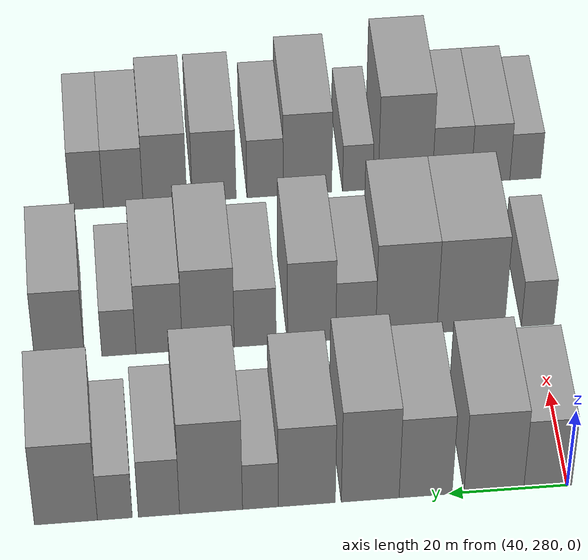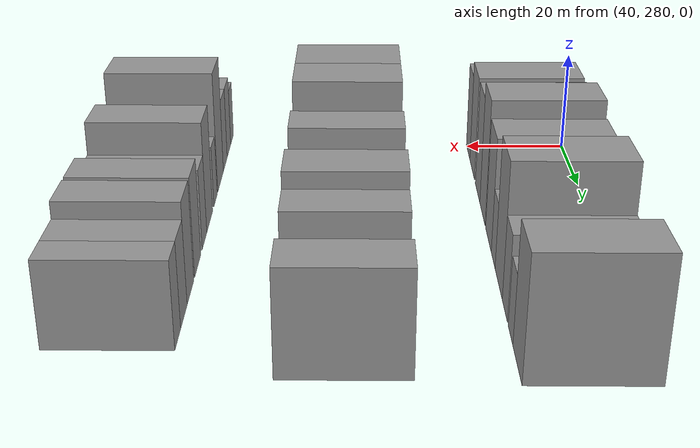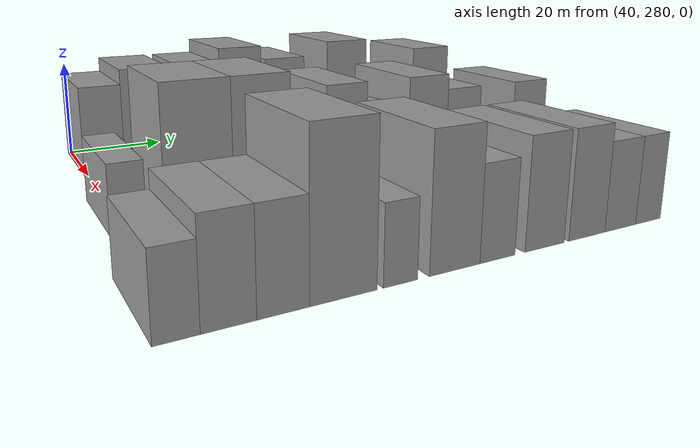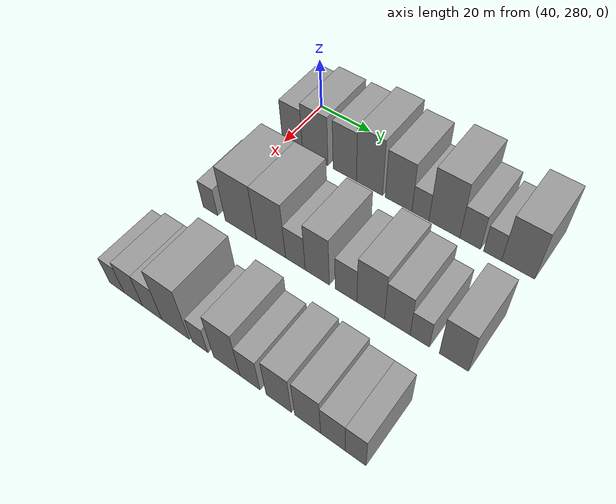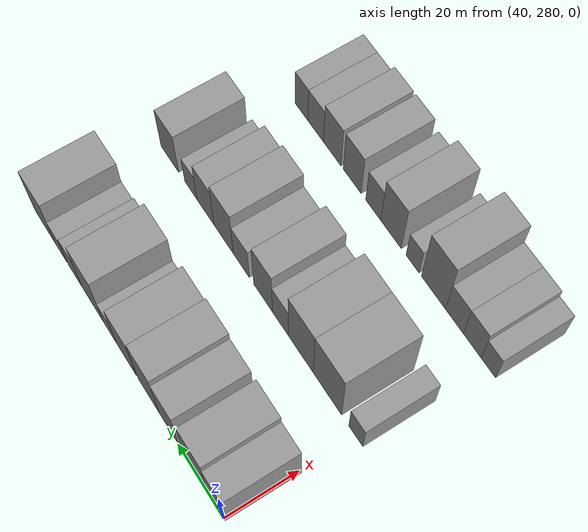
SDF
<sdf version="1.6">
 <world name="default">
  <model name="building_73">
   <static>1</static>
   <pose>50.0000 283.3544 0 0.000000 0.000000 0.000000</pose>
   <link name="link">
    <pose>0 0 9.00 0 0 0</pose>
    <collision name="collision"><geometry><box><size>20.0000 8.1279 18.0000</size></box></geometry></collision>
    <visual name="visual">
     <cast_shadows>0</cast_shadows>
     <geometry><box><size>20.0000 8.1279 18.0000</size></box></geometry>
     <material>
      <script>
       <uri>model://grey_wall/materials/scripts</uri>
       <uri>model://grey_wall/materials/textures</uri>
       <name>vrc/grey_wall</name>
      </script>
     </material>
    </visual>
   </link>
  </model>
  <model name="building_74">
   <static>1</static>
   <pose>50.0000 292.4575 0 0.000000 0.000000 0.000000</pose>
   <link name="link">
    <pose>0 0 10.50 0 0 0</pose>
    <collision name="collision"><geometry><box><size>20.0000 10.0783 21.0000</size></box></geometry></collision>
    <visual name="visual">
     <cast_shadows>0</cast_shadows>
     <geometry><box><size>20.0000 10.0783 21.0000</size></box></geometry>
     <material>
      <script>
       <uri>model://grey_wall/materials/scripts</uri>
       <uri>model://grey_wall/materials/textures</uri>
       <name>vrc/grey_wall</name>
      </script>
     </material>
    </visual>
   </link>
  </model>
  <model name="building_75">
   <static>1</static>
   <pose>50.0000 303.9528 0 0.000000 0.000000 0.000000</pose>
   <link name="link">
    <pose>0 0 10.50 0 0 0</pose>
    <collision name="collision"><geometry><box><size>20.0000 8.9124 21.0000</size></box></geometry></collision>
    <visual name="visual">
     <cast_shadows>0</cast_shadows>
     <geometry><box><size>20.0000 8.9124 21.0000</size></box></geometry>
     <material>
      <script>
       <uri>model://grey_wall/materials/scripts</uri>
       <uri>model://grey_wall/materials/textures</uri>
       <name>vrc/grey_wall</name>
      </script>
     </material>
    </visual>
   </link>
  </model>
  <model name="building_76">
   <static>1</static>
   <pose>50.0000 313.2614 0 0.000000 0.000000 0.000000</pose>
   <link name="link">
    <pose>0 0 12.00 0 0 0</pose>
    <collision name="collision"><geometry><box><size>20.0000 9.7048 24.0000</size></box></geometry></collision>
    <visual name="visual">
     <cast_shadows>0</cast_shadows>
     <geometry><box><size>20.0000 9.7048 24.0000</size></box></geometry>
     <material>
      <script>
       <uri>model://grey_wall/materials/scripts</uri>
       <uri>model://grey_wall/materials/textures</uri>
       <name>vrc/grey_wall</name>
      </script>
     </material>
    </visual>
   </link>
  </model>
  <model name="building_77">
   <static>1</static>
   <pose>50.0000 323.8792 0 0.000000 0.000000 0.000000</pose>
   <link name="link">
    <pose>0 0 10.50 0 0 0</pose>
    <collision name="collision"><geometry><box><size>20.0000 9.5310 21.0000</size></box></geometry></collision>
    <visual name="visual">
     <cast_shadows>0</cast_shadows>
     <geometry><box><size>20.0000 9.5310 21.0000</size></box></geometry>
     <material>
      <script>
       <uri>model://grey_wall/materials/scripts</uri>
       <uri>model://grey_wall/materials/textures</uri>
       <name>vrc/grey_wall</name>
      </script>
     </material>
    </visual>
   </link>
  </model>
  <model name="building_78">
   <static>1</static>
   <pose>50.0000 331.6305 0 0.000000 0.000000 0.000000</pose>
   <link name="link">
    <pose>0 0 6.00 0 0 0</pose>
    <collision name="collision"><geometry><box><size>20.0000 5.9716 12.0000</size></box></geometry></collision>
    <visual name="visual">
     <cast_shadows>0</cast_shadows>
     <geometry><box><size>20.0000 5.9716 12.0000</size></box></geometry>
     <material>
      <script>
       <uri>model://grey_wall/materials/scripts</uri>
       <uri>model://grey_wall/materials/textures</uri>
       <name>vrc/grey_wall</name>
      </script>
     </material>
    </visual>
   </link>
  </model>
  <model name="building_79">
   <static>1</static>
   <pose>50.0000 339.8569 0 0.000000 0.000000 0.000000</pose>
   <link name="link">
    <pose>0 0 12.00 0 0 0</pose>
    <collision name="collision"><geometry><box><size>20.0000 10.4810 24.0000</size></box></geometry></collision>
    <visual name="visual">
     <cast_shadows>0</cast_shadows>
     <geometry><box><size>20.0000 10.4810 24.0000</size></box></geometry>
     <material>
      <script>
       <uri>model://grey_wall/materials/scripts</uri>
       <uri>model://grey_wall/materials/textures</uri>
       <name>vrc/grey_wall</name>
      </script>
     </material>
    </visual>
   </link>
  </model>
  <model name="building_80">
   <static>1</static>
   <pose>50.0000 348.5293 0 0.000000 0.000000 0.000000</pose>
   <link name="link">
    <pose>0 0 7.50 0 0 0</pose>
    <collision name="collision"><geometry><box><size>20.0000 6.8639 15.0000</size></box></geometry></collision>
    <visual name="visual">
     <cast_shadows>0</cast_shadows>
     <geometry><box><size>20.0000 6.8639 15.0000</size></box></geometry>
     <material>
      <script>
       <uri>model://grey_wall/materials/scripts</uri>
       <uri>model://grey_wall/materials/textures</uri>
       <name>vrc/grey_wall</name>
      </script>
     </material>
    </visual>
   </link>
  </model>
  <model name="building_81">
   <static>1</static>
   <pose>50.0000 355.8564 0 0.000000 0.000000 0.000000</pose>
   <link name="link">
    <pose>0 0 6.00 0 0 0</pose>
    <collision name="collision"><geometry><box><size>20.0000 5.7903 12.0000</size></box></geometry></collision>
    <visual name="visual">
     <cast_shadows>0</cast_shadows>
     <geometry><box><size>20.0000 5.7903 12.0000</size></box></geometry>
     <material>
      <script>
       <uri>model://grey_wall/materials/scripts</uri>
       <uri>model://grey_wall/materials/textures</uri>
       <name>vrc/grey_wall</name>
      </script>
     </material>
    </visual>
   </link>
  </model>
  <model name="building_82">
   <static>1</static>
   <pose>50.0000 363.9693 0 0.000000 0.000000 0.000000</pose>
   <link name="link">
    <pose>0 0 10.50 0 0 0</pose>
    <collision name="collision"><geometry><box><size>20.0000 10.4354 21.0000</size></box></geometry></collision>
    <visual name="visual">
     <cast_shadows>0</cast_shadows>
     <geometry><box><size>20.0000 10.4354 21.0000</size></box></geometry>
     <material>
      <script>
       <uri>model://grey_wall/materials/scripts</uri>
       <uri>model://grey_wall/materials/textures</uri>
       <name>vrc/grey_wall</name>
      </script>
     </material>
    </visual>
   </link>
  </model>
  <model name="building_157">
   <static>1</static>
   <pose>85.0000 279.8059 0 0.000000 0.000000 0.000000</pose>
   <link name="link">
    <pose>0 0 6.00 0 0 0</pose>
    <collision name="collision"><geometry><box><size>20.0000 5.7753 12.0000</size></box></geometry></collision>
    <visual name="visual">
     <cast_shadows>0</cast_shadows>
     <geometry><box><size>20.0000 5.7753 12.0000</size></box></geometry>
     <material>
      <script>
       <uri>model://grey_wall/materials/scripts</uri>
       <uri>model://grey_wall/materials/textures</uri>
       <name>vrc/grey_wall</name>
      </script>
     </material>
    </visual>
   </link>
  </model>
  <model name="building_158">
   <static>1</static>
   <pose>85.0000 291.6742 0 0.000000 0.000000 0.000000</pose>
   <link name="link">
    <pose>0 0 12.00 0 0 0</pose>
    <collision name="collision"><geometry><box><size>20.0000 11.9613 24.0000</size></box></geometry></collision>
    <visual name="visual">
     <cast_shadows>0</cast_shadows>
     <geometry><box><size>20.0000 11.9613 24.0000</size></box></geometry>
     <material>
      <script>
       <uri>model://grey_wall/materials/scripts</uri>
       <uri>model://grey_wall/materials/textures</uri>
       <name>vrc/grey_wall</name>
      </script>
     </material>
    </visual>
   </link>
  </model>
  <model name="building_159">
   <static>1</static>
   <pose>85.0000 303.0565 0 0.000000 0.000000 0.000000</pose>
   <link name="link">
    <pose>0 0 12.00 0 0 0</pose>
    <collision name="collision"><geometry><box><size>20.0000 10.8032 24.0000</size></box></geometry></collision>
    <visual name="visual">
     <cast_shadows>0</cast_shadows>
     <geometry><box><size>20.0000 10.8032 24.0000</size></box></geometry>
     <material>
      <script>
       <uri>model://grey_wall/materials/scripts</uri>
       <uri>model://grey_wall/materials/textures</uri>
       <name>vrc/grey_wall</name>
      </script>
     </material>
    </visual>
   </link>
  </model>
  <model name="building_160">
   <static>1</static>
   <pose>85.0000 311.9696 0 0.000000 0.000000 0.000000</pose>
   <link name="link">
    <pose>0 0 7.50 0 0 0</pose>
    <collision name="collision"><geometry><box><size>20.0000 7.0230 15.0000</size></box></geometry></collision>
    <visual name="visual">
     <cast_shadows>0</cast_shadows>
     <geometry><box><size>20.0000 7.0230 15.0000</size></box></geometry>
     <material>
      <script>
       <uri>model://grey_wall/materials/scripts</uri>
       <uri>model://grey_wall/materials/textures</uri>
       <name>vrc/grey_wall</name>
      </script>
     </material>
    </visual>
   </link>
  </model>
  <model name="building_161">
   <static>1</static>
   <pose>85.0000 319.7075 0 0.000000 0.000000 0.000000</pose>
   <link name="link">
    <pose>0 0 10.50 0 0 0</pose>
    <collision name="collision"><geometry><box><size>20.0000 8.4528 21.0000</size></box></geometry></collision>
    <visual name="visual">
     <cast_shadows>0</cast_shadows>
     <geometry><box><size>20.0000 8.4528 21.0000</size></box></geometry>
     <material>
      <script>
       <uri>model://grey_wall/materials/scripts</uri>
       <uri>model://grey_wall/materials/textures</uri>
       <name>vrc/grey_wall</name>
      </script>
     </material>
    </visual>
   </link>
  </model>
  <model name="building_162">
   <static>1</static>
   <pose>85.0000 329.5871 0 0.000000 0.000000 0.000000</pose>
   <link name="link">
    <pose>0 0 7.50 0 0 0</pose>
    <collision name="collision"><geometry><box><size>20.0000 7.3066 15.0000</size></box></geometry></collision>
    <visual name="visual">
     <cast_shadows>0</cast_shadows>
     <geometry><box><size>20.0000 7.3066 15.0000</size></box></geometry>
     <material>
      <script>
       <uri>model://grey_wall/materials/scripts</uri>
       <uri>model://grey_wall/materials/textures</uri>
       <name>vrc/grey_wall</name>
      </script>
     </material>
    </visual>
   </link>
  </model>
  <model name="building_163">
   <static>1</static>
   <pose>85.0000 337.7829 0 0.000000 0.000000 0.000000</pose>
   <link name="link">
    <pose>0 0 10.50 0 0 0</pose>
    <collision name="collision"><geometry><box><size>20.0000 9.0849 21.0000</size></box></geometry></collision>
    <visual name="visual">
     <cast_shadows>0</cast_shadows>
     <geometry><box><size>20.0000 9.0849 21.0000</size></box></geometry>
     <material>
      <script>
       <uri>model://grey_wall/materials/scripts</uri>
       <uri>model://grey_wall/materials/textures</uri>
       <name>vrc/grey_wall</name>
      </script>
     </material>
    </visual>
   </link>
  </model>
  <model name="building_164">
   <static>1</static>
   <pose>85.0000 346.3724 0 0.000000 0.000000 0.000000</pose>
   <link name="link">
    <pose>0 0 9.00 0 0 0</pose>
    <collision name="collision"><geometry><box><size>20.0000 8.0942 18.0000</size></box></geometry></collision>
    <visual name="visual">
     <cast_shadows>0</cast_shadows>
     <geometry><box><size>20.0000 8.0942 18.0000</size></box></geometry>
     <material>
      <script>
       <uri>model://grey_wall/materials/scripts</uri>
       <uri>model://grey_wall/materials/textures</uri>
       <name>vrc/grey_wall</name>
      </script>
     </material>
    </visual>
   </link>
  </model>
  <model name="building_165">
   <static>1</static>
   <pose>85.0000 353.4026 0 0.000000 0.000000 0.000000</pose>
   <link name="link">
    <pose>0 0 6.00 0 0 0</pose>
    <collision name="collision"><geometry><box><size>20.0000 5.9663 12.0000</size></box></geometry></collision>
    <visual name="visual">
     <cast_shadows>0</cast_shadows>
     <geometry><box><size>20.0000 5.9663 12.0000</size></box></geometry>
     <material>
      <script>
       <uri>model://grey_wall/materials/scripts</uri>
       <uri>model://grey_wall/materials/textures</uri>
       <name>vrc/grey_wall</name>
      </script>
     </material>
    </visual>
   </link>
  </model>
  <model name="building_166">
   <static>1</static>
   <pose>85.0000 363.7297 0 0.000000 0.000000 0.000000</pose>
   <link name="link">
    <pose>0 0 9.00 0 0 0</pose>
    <collision name="collision"><geometry><box><size>20.0000 8.6880 18.0000</size></box></geometry></collision>
    <visual name="visual">
     <cast_shadows>0</cast_shadows>
     <geometry><box><size>20.0000 8.6880 18.0000</size></box></geometry>
     <material>
      <script>
       <uri>model://grey_wall/materials/scripts</uri>
       <uri>model://grey_wall/materials/textures</uri>
       <name>vrc/grey_wall</name>
      </script>
     </material>
    </visual>
   </link>
  </model>
  <model name="building_237">
   <static>1</static>
   <pose>120.0000 276.8444 0 0.000000 0.000000 0.000000</pose>
   <link name="link">
    <pose>0 0 6.00 0 0 0</pose>
    <collision name="collision"><geometry><box><size>20.0000 5.7488 12.0000</size></box></geometry></collision>
    <visual name="visual">
     <cast_shadows>0</cast_shadows>
     <geometry><box><size>20.0000 5.7488 12.0000</size></box></geometry>
     <material>
      <script>
       <uri>model://grey_wall/materials/scripts</uri>
       <uri>model://grey_wall/materials/textures</uri>
       <name>vrc/grey_wall</name>
      </script>
     </material>
    </visual>
   </link>
  </model>
  <model name="building_238">
   <static>1</static>
   <pose>120.0000 283.2924 0 0.000000 0.000000 0.000000</pose>
   <link name="link">
    <pose>0 0 7.50 0 0 0</pose>
    <collision name="collision"><geometry><box><size>20.0000 7.1472 15.0000</size></box></geometry></collision>
    <visual name="visual">
     <cast_shadows>0</cast_shadows>
     <geometry><box><size>20.0000 7.1472 15.0000</size></box></geometry>
     <material>
      <script>
       <uri>model://grey_wall/materials/scripts</uri>
       <uri>model://grey_wall/materials/textures</uri>
       <name>vrc/grey_wall</name>
      </script>
     </material>
    </visual>
   </link>
  </model>
  <model name="building_239">
   <static>1</static>
   <pose>120.0000 290.4826 0 0.000000 0.000000 0.000000</pose>
   <link name="link">
    <pose>0 0 7.50 0 0 0</pose>
    <collision name="collision"><geometry><box><size>20.0000 7.2331 15.0000</size></box></geometry></collision>
    <visual name="visual">
     <cast_shadows>0</cast_shadows>
     <geometry><box><size>20.0000 7.2331 15.0000</size></box></geometry>
     <material>
      <script>
       <uri>model://grey_wall/materials/scripts</uri>
       <uri>model://grey_wall/materials/textures</uri>
       <name>vrc/grey_wall</name>
      </script>
     </material>
    </visual>
   </link>
  </model>
  <model name="building_240">
   <static>1</static>
   <pose>120.0000 299.1024 0 0.000000 0.000000 0.000000</pose>
   <link name="link">
    <pose>0 0 12.00 0 0 0</pose>
    <collision name="collision"><geometry><box><size>20.0000 10.0066 24.0000</size></box></geometry></collision>
    <visual name="visual">
     <cast_shadows>0</cast_shadows>
     <geometry><box><size>20.0000 10.0066 24.0000</size></box></geometry>
     <material>
      <script>
       <uri>model://grey_wall/materials/scripts</uri>
       <uri>model://grey_wall/materials/textures</uri>
       <name>vrc/grey_wall</name>
      </script>
     </material>
    </visual>
   </link>
  </model>
  <model name="building_241">
   <static>1</static>
   <pose>120.0000 307.8752 0 0.000000 0.000000 0.000000</pose>
   <link name="link">
    <pose>0 0 6.00 0 0 0</pose>
    <collision name="collision"><geometry><box><size>20.0000 5.5390 12.0000</size></box></geometry></collision>
    <visual name="visual">
     <cast_shadows>0</cast_shadows>
     <geometry><box><size>20.0000 5.5390 12.0000</size></box></geometry>
     <material>
      <script>
       <uri>model://grey_wall/materials/scripts</uri>
       <uri>model://grey_wall/materials/textures</uri>
       <name>vrc/grey_wall</name>
      </script>
     </material>
    </visual>
   </link>
  </model>
  <model name="building_242">
   <static>1</static>
   <pose>120.0000 317.1034 0 0.000000 0.000000 0.000000</pose>
   <link name="link">
    <pose>0 0 10.50 0 0 0</pose>
    <collision name="collision"><geometry><box><size>20.0000 8.9175 21.0000</size></box></geometry></collision>
    <visual name="visual">
     <cast_shadows>0</cast_shadows>
     <geometry><box><size>20.0000 8.9175 21.0000</size></box></geometry>
     <material>
      <script>
       <uri>model://grey_wall/materials/scripts</uri>
       <uri>model://grey_wall/materials/textures</uri>
       <name>vrc/grey_wall</name>
      </script>
     </material>
    </visual>
   </link>
  </model>
  <model name="building_243">
   <static>1</static>
   <pose>120.0000 324.8792 0 0.000000 0.000000 0.000000</pose>
   <link name="link">
    <pose>0 0 7.50 0 0 0</pose>
    <collision name="collision"><geometry><box><size>20.0000 6.6342 15.0000</size></box></geometry></collision>
    <visual name="visual">
     <cast_shadows>0</cast_shadows>
     <geometry><box><size>20.0000 6.6342 15.0000</size></box></geometry>
     <material>
      <script>
       <uri>model://grey_wall/materials/scripts</uri>
       <uri>model://grey_wall/materials/textures</uri>
       <name>vrc/grey_wall</name>
      </script>
     </material>
    </visual>
   </link>
  </model>
  <model name="building_244">
   <static>1</static>
   <pose>120.0000 334.2100 0 0.000000 0.000000 0.000000</pose>
   <link name="link">
    <pose>0 0 9.00 0 0 0</pose>
    <collision name="collision"><geometry><box><size>20.0000 8.0273 18.0000</size></box></geometry></collision>
    <visual name="visual">
     <cast_shadows>0</cast_shadows>
     <geometry><box><size>20.0000 8.0273 18.0000</size></box></geometry>
     <material>
      <script>
       <uri>model://grey_wall/materials/scripts</uri>
       <uri>model://grey_wall/materials/textures</uri>
       <name>vrc/grey_wall</name>
      </script>
     </material>
    </visual>
   </link>
  </model>
  <model name="building_245">
   <static>1</static>
   <pose>120.0000 343.2223 0 0.000000 0.000000 0.000000</pose>
   <link name="link">
    <pose>0 0 9.00 0 0 0</pose>
    <collision name="collision"><geometry><box><size>20.0000 7.9974 18.0000</size></box></geometry></collision>
    <visual name="visual">
     <cast_shadows>0</cast_shadows>
     <geometry><box><size>20.0000 7.9974 18.0000</size></box></geometry>
     <material>
      <script>
       <uri>model://grey_wall/materials/scripts</uri>
       <uri>model://grey_wall/materials/textures</uri>
       <name>vrc/grey_wall</name>
      </script>
     </material>
    </visual>
   </link>
  </model>
  <model name="building_246">
   <static>1</static>
   <pose>120.0000 350.8408 0 0.000000 0.000000 0.000000</pose>
   <link name="link">
    <pose>0 0 7.50 0 0 0</pose>
    <collision name="collision"><geometry><box><size>20.0000 7.2397 15.0000</size></box></geometry></collision>
    <visual name="visual">
     <cast_shadows>0</cast_shadows>
     <geometry><box><size>20.0000 7.2397 15.0000</size></box></geometry>
     <material>
      <script>
       <uri>model://grey_wall/materials/scripts</uri>
       <uri>model://grey_wall/materials/textures</uri>
       <name>vrc/grey_wall</name>
      </script>
     </material>
    </visual>
   </link>
  </model>
  <model name="building_247">
   <static>1</static>
   <pose>120.0000 357.4950 0 0.000000 0.000000 0.000000</pose>
   <link name="link">
    <pose>0 0 7.50 0 0 0</pose>
    <collision name="collision"><geometry><box><size>20.0000 6.0688 15.0000</size></box></geometry></collision>
    <visual name="visual">
     <cast_shadows>0</cast_shadows>
     <geometry><box><size>20.0000 6.0688 15.0000</size></box></geometry>
     <material>
      <script>
       <uri>model://grey_wall/materials/scripts</uri>
       <uri>model://grey_wall/materials/textures</uri>
       <name>vrc/grey_wall</name>
      </script>
     </material>
    </visual>
   </link>
  </model>
 </world>
</sdf>
